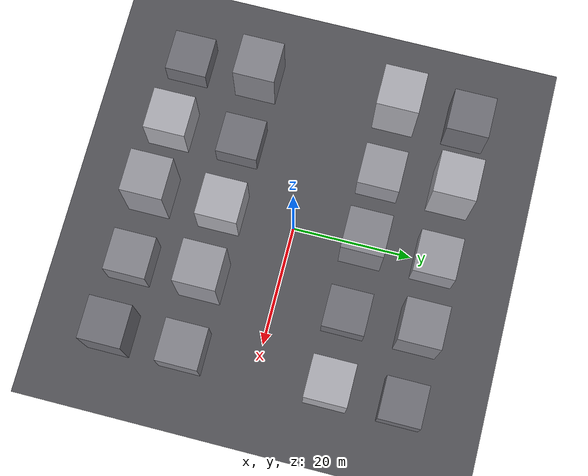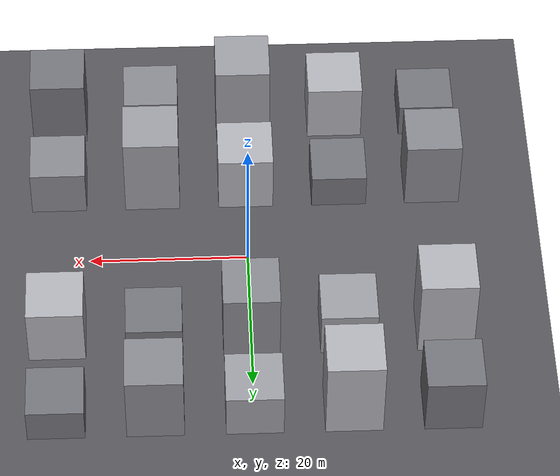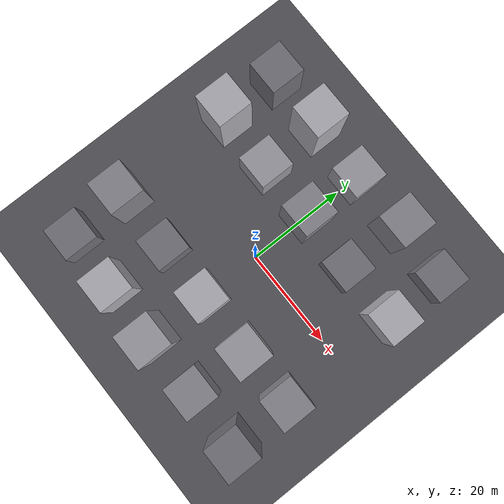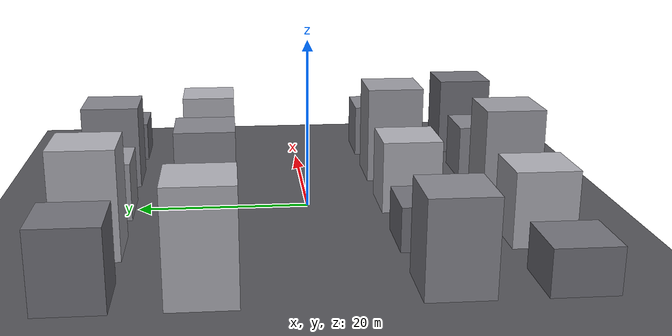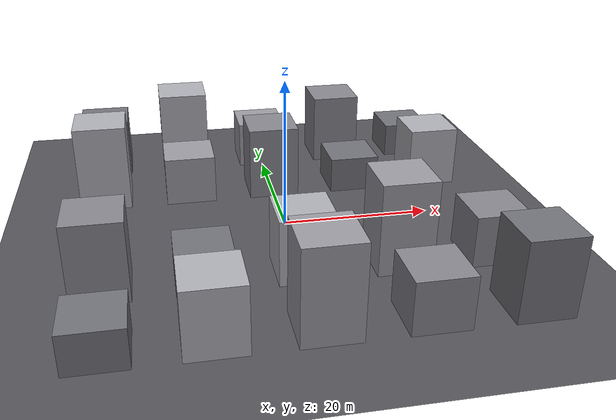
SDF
<?xml version="1.0" encoding="UTF-8"?>
<sdf version="1.9">
  <world name="swarm_autonomy_city">
    <physics type="ode">
      <max_step_size>0.004</max_step_size>
      <real_time_factor>1.0</real_time_factor>
      <real_time_update_rate>250</real_time_update_rate>
    </physics>
    <gravity>0 0 -9.8</gravity>
    <magnetic_field>6e-06 2.3e-05 -4.2e-05</magnetic_field>
    <atmosphere type="adiabatic"/>
    <scene>
      <grid>false</grid>
      <ambient>0.5 0.5 0.5 1</ambient>
      <background>0.6 0.75 0.92 1</background>
      <shadows>true</shadows>
    </scene>
    <model name="ground_plane">
      <static>true</static>
      <link name="link">
        <collision name="collision">
          <geometry><plane><normal>0 0 1</normal><size>1 1</size></plane></geometry>
          <surface><friction><ode/></friction><bounce/><contact/></surface>
        </collision>
        <visual name="visual">
          <geometry><plane><normal>0 0 1</normal><size>500 500</size></plane></geometry>
          <material>
            <ambient>0.33 0.33 0.35 1</ambient>
            <diffuse>0.33 0.33 0.35 1</diffuse>
            <specular>0.2 0.2 0.2 1</specular>
          </material>
        </visual>
        <pose>0 0 0 0 -0 0</pose>
        <inertial><pose>0 0 0 0 -0 0</pose><mass>1</mass>
          <inertia><ixx>1</ixx><ixy>0</ixy><ixz>0</ixz><iyy>1</iyy><iyz>0</iyz><izz>1</izz></inertia>
        </inertial>
        <enable_wind>false</enable_wind>
      </link>
      <pose>0 0 0 0 -0 0</pose>
      <self_collide>false</self_collide>
    </model>
    <light name="sunUTC" type="directional">
      <pose>0 0 500 0 -0 0</pose>
      <cast_shadows>true</cast_shadows>
      <intensity>1</intensity>
      <direction>0.001 0.625 -0.78</direction>
      <diffuse>0.904 0.904 0.904 1</diffuse>
      <specular>0.271 0.271 0.271 1</specular>
      <attenuation><range>2000</range><linear>0</linear><constant>1</constant><quadratic>0</quadratic></attenuation>
      <spot><inner_angle>0</inner_angle><outer_angle>0</outer_angle><falloff>0</falloff></spot>
    </light>
    <model name="b_-24_-24">
      <static>true</static>
      <pose>-24 -24 2.5 0 0 0</pose>
      <link name="link">
        <collision name="c">
          <geometry><box><size>7.0 7.0 5.0</size></box></geometry>
        </collision>
        <visual name="v">
          <geometry><box><size>7.0 7.0 5.0</size></box></geometry>
          <material>
            <ambient>0.45 0.45 0.48 1</ambient>
            <diffuse>0.45 0.45 0.48 1</diffuse>
            <specular>0.2 0.2 0.2 1</specular>
          </material>
        </visual>
      </link>
    </model>
    <model name="b_-24_-12">
      <static>true</static>
      <pose>-24 -12 5.125 0 0 0</pose>
      <link name="link">
        <collision name="c">
          <geometry><box><size>7.0 7.0 10.25</size></box></geometry>
        </collision>
        <visual name="v">
          <geometry><box><size>7.0 7.0 10.25</size></box></geometry>
          <material>
            <ambient>0.53 0.53 0.56 1</ambient>
            <diffuse>0.53 0.53 0.56 1</diffuse>
            <specular>0.2 0.2 0.2 1</specular>
          </material>
        </visual>
      </link>
    </model>
    <model name="b_-24_12">
      <static>true</static>
      <pose>-24 12 6.0 0 0 0</pose>
      <link name="link">
        <collision name="c">
          <geometry><box><size>7.0 7.0 12.0</size></box></geometry>
        </collision>
        <visual name="v">
          <geometry><box><size>7.0 7.0 12.0</size></box></geometry>
          <material>
            <ambient>0.69 0.69 0.72 1</ambient>
            <diffuse>0.69 0.69 0.72 1</diffuse>
            <specular>0.2 0.2 0.2 1</specular>
          </material>
        </visual>
      </link>
    </model>
    <model name="b_-24_24">
      <static>true</static>
      <pose>-24 24 4.25 0 0 0</pose>
      <link name="link">
        <collision name="c">
          <geometry><box><size>7.0 7.0 8.5</size></box></geometry>
        </collision>
        <visual name="v">
          <geometry><box><size>7.0 7.0 8.5</size></box></geometry>
          <material>
            <ambient>0.45 0.45 0.48 1</ambient>
            <diffuse>0.45 0.45 0.48 1</diffuse>
            <specular>0.2 0.2 0.2 1</specular>
          </material>
        </visual>
      </link>
    </model>
    <model name="b_-12_-24">
      <static>true</static>
      <pose>-12 -24 4.25 0 0 0</pose>
      <link name="link">
        <collision name="c">
          <geometry><box><size>7.0 7.0 8.5</size></box></geometry>
        </collision>
        <visual name="v">
          <geometry><box><size>7.0 7.0 8.5</size></box></geometry>
          <material>
            <ambient>0.69 0.69 0.72 1</ambient>
            <diffuse>0.69 0.69 0.72 1</diffuse>
            <specular>0.2 0.2 0.2 1</specular>
          </material>
        </visual>
      </link>
    </model>
    <model name="b_-12_-12">
      <static>true</static>
      <pose>-12 -12 2.5 0 0 0</pose>
      <link name="link">
        <collision name="c">
          <geometry><box><size>7.0 7.0 5.0</size></box></geometry>
        </collision>
        <visual name="v">
          <geometry><box><size>7.0 7.0 5.0</size></box></geometry>
          <material>
            <ambient>0.45 0.45 0.48 1</ambient>
            <diffuse>0.45 0.45 0.48 1</diffuse>
            <specular>0.2 0.2 0.2 1</specular>
          </material>
        </visual>
      </link>
    </model>
    <model name="b_-12_12">
      <static>true</static>
      <pose>-12 12 3.375 0 0 0</pose>
      <link name="link">
        <collision name="c">
          <geometry><box><size>7.0 7.0 6.75</size></box></geometry>
        </collision>
        <visual name="v">
          <geometry><box><size>7.0 7.0 6.75</size></box></geometry>
          <material>
            <ambient>0.61 0.61 0.64 1</ambient>
            <diffuse>0.61 0.61 0.64 1</diffuse>
            <specular>0.2 0.2 0.2 1</specular>
          </material>
        </visual>
      </link>
    </model>
    <model name="b_-12_24">
      <static>true</static>
      <pose>-12 24 6.0 0 0 0</pose>
      <link name="link">
        <collision name="c">
          <geometry><box><size>7.0 7.0 12.0</size></box></geometry>
        </collision>
        <visual name="v">
          <geometry><box><size>7.0 7.0 12.0</size></box></geometry>
          <material>
            <ambient>0.69 0.69 0.72 1</ambient>
            <diffuse>0.69 0.69 0.72 1</diffuse>
            <specular>0.2 0.2 0.2 1</specular>
          </material>
        </visual>
      </link>
    </model>
    <model name="b_0_-24">
      <static>true</static>
      <pose>0 -24 6.0 0 0 0</pose>
      <link name="link">
        <collision name="c">
          <geometry><box><size>7.0 7.0 12.0</size></box></geometry>
        </collision>
        <visual name="v">
          <geometry><box><size>7.0 7.0 12.0</size></box></geometry>
          <material>
            <ambient>0.61 0.61 0.64 1</ambient>
            <diffuse>0.61 0.61 0.64 1</diffuse>
            <specular>0.2 0.2 0.2 1</specular>
          </material>
        </visual>
      </link>
    </model>
    <model name="b_0_-12">
      <static>true</static>
      <pose>0 -12 4.25 0 0 0</pose>
      <link name="link">
        <collision name="c">
          <geometry><box><size>7.0 7.0 8.5</size></box></geometry>
        </collision>
        <visual name="v">
          <geometry><box><size>7.0 7.0 8.5</size></box></geometry>
          <material>
            <ambient>0.69 0.69 0.72 1</ambient>
            <diffuse>0.69 0.69 0.72 1</diffuse>
            <specular>0.2 0.2 0.2 1</specular>
          </material>
        </visual>
      </link>
    </model>
    <model name="b_0_12">
      <static>true</static>
      <pose>0 12 5.125 0 0 0</pose>
      <link name="link">
        <collision name="c">
          <geometry><box><size>7.0 7.0 10.25</size></box></geometry>
        </collision>
        <visual name="v">
          <geometry><box><size>7.0 7.0 10.25</size></box></geometry>
          <material>
            <ambient>0.53 0.53 0.56 1</ambient>
            <diffuse>0.53 0.53 0.56 1</diffuse>
            <specular>0.2 0.2 0.2 1</specular>
          </material>
        </visual>
      </link>
    </model>
    <model name="b_0_24">
      <static>true</static>
      <pose>0 24 3.375 0 0 0</pose>
      <link name="link">
        <collision name="c">
          <geometry><box><size>7.0 7.0 6.75</size></box></geometry>
        </collision>
        <visual name="v">
          <geometry><box><size>7.0 7.0 6.75</size></box></geometry>
          <material>
            <ambient>0.61 0.61 0.64 1</ambient>
            <diffuse>0.61 0.61 0.64 1</diffuse>
            <specular>0.2 0.2 0.2 1</specular>
          </material>
        </visual>
      </link>
    </model>
    <model name="b_12_-24">
      <static>true</static>
      <pose>12 -24 3.375 0 0 0</pose>
      <link name="link">
        <collision name="c">
          <geometry><box><size>7.0 7.0 6.75</size></box></geometry>
        </collision>
        <visual name="v">
          <geometry><box><size>7.0 7.0 6.75</size></box></geometry>
          <material>
            <ambient>0.53 0.53 0.56 1</ambient>
            <diffuse>0.53 0.53 0.56 1</diffuse>
            <specular>0.2 0.2 0.2 1</specular>
          </material>
        </visual>
      </link>
    </model>
    <model name="b_12_-12">
      <static>true</static>
      <pose>12 -12 6.0 0 0 0</pose>
      <link name="link">
        <collision name="c">
          <geometry><box><size>7.0 7.0 12.0</size></box></geometry>
        </collision>
        <visual name="v">
          <geometry><box><size>7.0 7.0 12.0</size></box></geometry>
          <material>
            <ambient>0.61 0.61 0.64 1</ambient>
            <diffuse>0.61 0.61 0.64 1</diffuse>
            <specular>0.2 0.2 0.2 1</specular>
          </material>
        </visual>
      </link>
    </model>
    <model name="b_12_12">
      <static>true</static>
      <pose>12 12 2.5 0 0 0</pose>
      <link name="link">
        <collision name="c">
          <geometry><box><size>7.0 7.0 5.0</size></box></geometry>
        </collision>
        <visual name="v">
          <geometry><box><size>7.0 7.0 5.0</size></box></geometry>
          <material>
            <ambient>0.45 0.45 0.48 1</ambient>
            <diffuse>0.45 0.45 0.48 1</diffuse>
            <specular>0.2 0.2 0.2 1</specular>
          </material>
        </visual>
      </link>
    </model>
    <model name="b_12_24">
      <static>true</static>
      <pose>12 24 5.125 0 0 0</pose>
      <link name="link">
        <collision name="c">
          <geometry><box><size>7.0 7.0 10.25</size></box></geometry>
        </collision>
        <visual name="v">
          <geometry><box><size>7.0 7.0 10.25</size></box></geometry>
          <material>
            <ambient>0.53 0.53 0.56 1</ambient>
            <diffuse>0.53 0.53 0.56 1</diffuse>
            <specular>0.2 0.2 0.2 1</specular>
          </material>
        </visual>
      </link>
    </model>
    <model name="b_24_-24">
      <static>true</static>
      <pose>24 -24 5.125 0 0 0</pose>
      <link name="link">
        <collision name="c">
          <geometry><box><size>7.0 7.0 10.25</size></box></geometry>
        </collision>
        <visual name="v">
          <geometry><box><size>7.0 7.0 10.25</size></box></geometry>
          <material>
            <ambient>0.45 0.45 0.48 1</ambient>
            <diffuse>0.45 0.45 0.48 1</diffuse>
            <specular>0.2 0.2 0.2 1</specular>
          </material>
        </visual>
      </link>
    </model>
    <model name="b_24_-12">
      <static>true</static>
      <pose>24 -12 3.375 0 0 0</pose>
      <link name="link">
        <collision name="c">
          <geometry><box><size>7.0 7.0 6.75</size></box></geometry>
        </collision>
        <visual name="v">
          <geometry><box><size>7.0 7.0 6.75</size></box></geometry>
          <material>
            <ambient>0.53 0.53 0.56 1</ambient>
            <diffuse>0.53 0.53 0.56 1</diffuse>
            <specular>0.2 0.2 0.2 1</specular>
          </material>
        </visual>
      </link>
    </model>
    <model name="b_24_12">
      <static>true</static>
      <pose>24 12 4.25 0 0 0</pose>
      <link name="link">
        <collision name="c">
          <geometry><box><size>7.0 7.0 8.5</size></box></geometry>
        </collision>
        <visual name="v">
          <geometry><box><size>7.0 7.0 8.5</size></box></geometry>
          <material>
            <ambient>0.69 0.69 0.72 1</ambient>
            <diffuse>0.69 0.69 0.72 1</diffuse>
            <specular>0.2 0.2 0.2 1</specular>
          </material>
        </visual>
      </link>
    </model>
    <model name="b_24_24">
      <static>true</static>
      <pose>24 24 2.5 0 0 0</pose>
      <link name="link">
        <collision name="c">
          <geometry><box><size>7.0 7.0 5.0</size></box></geometry>
        </collision>
        <visual name="v">
          <geometry><box><size>7.0 7.0 5.0</size></box></geometry>
          <material>
            <ambient>0.45 0.45 0.48 1</ambient>
            <diffuse>0.45 0.45 0.48 1</diffuse>
            <specular>0.2 0.2 0.2 1</specular>
          </material>
        </visual>
      </link>
    </model>
    <spherical_coordinates>
      <surface_model>EARTH_WGS84</surface_model>
      <world_frame_orientation>ENU</world_frame_orientation>
      <latitude_deg>47.397971057728974</latitude_deg>
      <longitude_deg> 8.546163739800146</longitude_deg>
      <elevation>0</elevation>
    </spherical_coordinates>
  </world>
</sdf>
